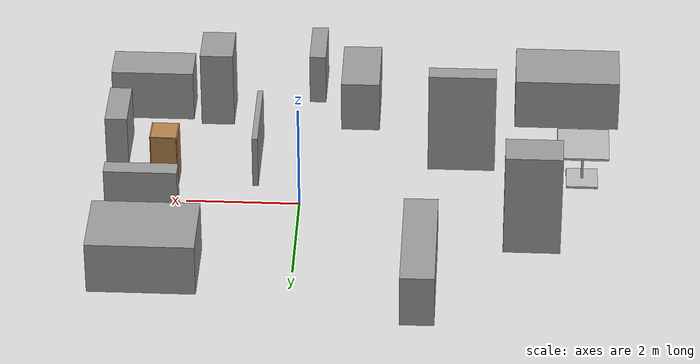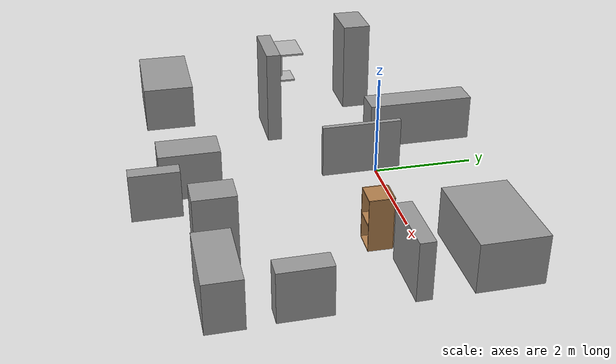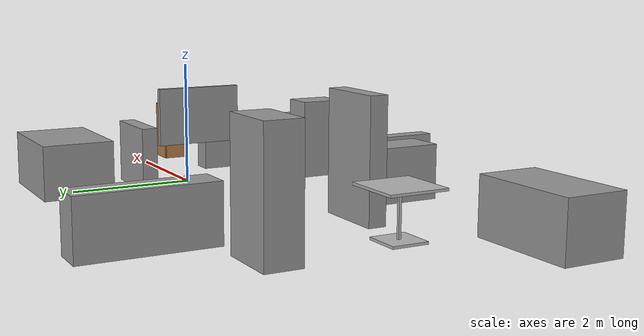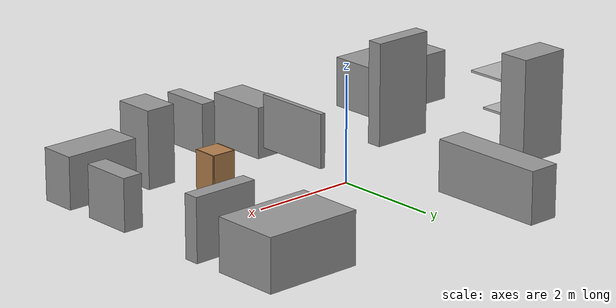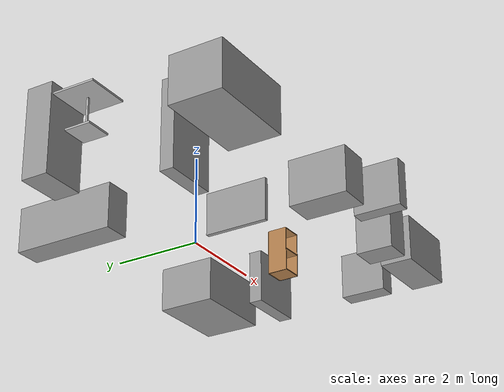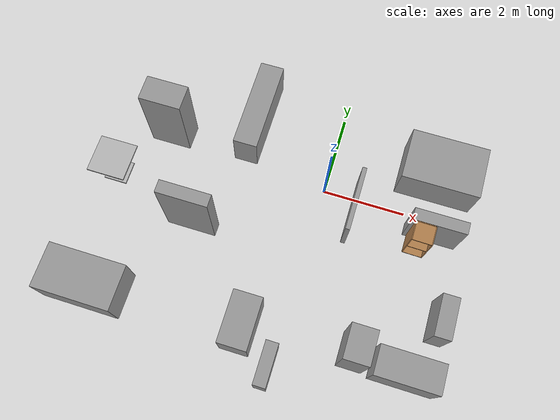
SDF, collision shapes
<?xml version='1.0'?>
<sdf version='1.6'>
  <model name='furniture'>
    <link name='link'>
      <pose frame=''>0.75265 -0.543408 1.01689 0 -0 0</pose>
      <inertial>
        <mass>1</mass>
        <inertia>
          <ixx>0.166667</ixx>
          <ixy>0</ixy>
          <ixz>0</ixz>
          <iyy>0.166667</iyy>
          <iyz>0</iyz>
          <izz>0.166667</izz>
        </inertia>
        <pose frame=''>0 0 0 0 -0 0</pose>
      </inertial>
      <self_collide>0</self_collide>
      <kinematic>0</kinematic>
      <gravity>1</gravity>
      <visual name='visual'>
        <geometry>
          <box>
            <size>0.1 1.5 1</size>
          </box>
        </geometry>
        <material>
          <script>
            <name>Gazebo/Grey</name>
            <uri>file://media/materials/scripts/gazebo.material</uri>
          </script>
          <shader type='pixel'>
            <normal_map>__default__</normal_map>
          </shader>
          <ambient>0.3 0.3 0.3 1</ambient>
          <diffuse>0.7 0.7 0.7 1</diffuse>
          <specular>0.01 0.01 0.01 1</specular>
          <emissive>0 0 0 1</emissive>
        </material>
        <pose frame=''>0 0 0 0 -0 0</pose>
        <transparency>0</transparency>
        <cast_shadows>1</cast_shadows>
      </visual>
      <collision name='collision'>
        <laser_retro>0</laser_retro>
        <max_contacts>10</max_contacts>
        <pose frame=''>0 0 0 0 -0 0</pose>
        <geometry>
          <box>
            <size>0.1 1.5 1</size>
          </box>
        </geometry>
        <surface>
          <friction>
            <ode>
              <mu>1</mu>
              <mu2>1</mu2>
              <fdir1>0 0 0</fdir1>
              <slip1>0</slip1>
              <slip2>0</slip2>
            </ode>
            <torsional>
              <coefficient>1</coefficient>
              <patch_radius>0</patch_radius>
              <surface_radius>0</surface_radius>
              <use_patch_radius>1</use_patch_radius>
              <ode>
                <slip>0</slip>
              </ode>
            </torsional>
          </friction>
          <bounce>
            <restitution_coefficient>0</restitution_coefficient>
            <threshold>1e+06</threshold>
          </bounce>
          <contact>
            <collide_without_contact>0</collide_without_contact>
            <collide_without_contact_bitmask>1</collide_without_contact_bitmask>
            <collide_bitmask>1</collide_bitmask>
            <ode>
              <soft_cfm>0</soft_cfm>
              <soft_erp>0.2</soft_erp>
              <kp>1e+13</kp>
              <kd>1</kd>
              <max_vel>0.01</max_vel>
              <min_depth>0</min_depth>
            </ode>
            <bullet>
              <split_impulse>1</split_impulse>
              <split_impulse_penetration_threshold>-0.01</split_impulse_penetration_threshold>
              <soft_cfm>0</soft_cfm>
              <soft_erp>0.2</soft_erp>
              <kp>1e+13</kp>
              <kd>1</kd>
            </bullet>
          </contact>
        </surface>
      </collision>
    </link>
    <link name='link_0'>
      <pose frame=''>2.89716 -3.59208 0 0 -0 0</pose>
      <inertial>
        <mass>1</mass>
        <inertia>
          <ixx>0.166667</ixx>
          <ixy>0</ixy>
          <ixz>0</ixz>
          <iyy>0.166667</iyy>
          <iyz>0</iyz>
          <izz>0.166667</izz>
        </inertia>
        <pose frame=''>0 0 0 0 -0 0</pose>
      </inertial>
      <gravity>1</gravity>
      <self_collide>0</self_collide>
      <kinematic>0</kinematic>
      <visual name='visual'>
        <pose frame=''>0 0 0 0 -0 0</pose>
        <geometry>
          <box>
            <size>1.5 0.7 1</size>
          </box>
        </geometry>
        <material>
          <lighting>1</lighting>
          <script>
            <uri>file://media/materials/scripts/gazebo.material</uri>
            <name>Gazebo/Grey</name>
          </script>
          <shader type='pixel'>
            <normal_map>__default__</normal_map>
          </shader>
          <ambient>0.3 0.3 0.3 1</ambient>
          <diffuse>0.7 0.7 0.7 1</diffuse>
          <specular>0.01 0.01 0.01 1</specular>
          <emissive>0 0 0 1</emissive>
        </material>
        <transparency>0</transparency>
        <cast_shadows>1</cast_shadows>
      </visual>
      <collision name='collision'>
        <laser_retro>0</laser_retro>
        <max_contacts>10</max_contacts>
        <pose frame=''>0 0 0 0 -0 0</pose>
        <geometry>
          <box>
            <size>1.5 0.7 1</size>
          </box>
        </geometry>
        <surface>
          <friction>
            <ode>
              <mu>1</mu>
              <mu2>1</mu2>
              <fdir1>0 0 0</fdir1>
              <slip1>0</slip1>
              <slip2>0</slip2>
            </ode>
            <torsional>
              <coefficient>1</coefficient>
              <patch_radius>0</patch_radius>
              <surface_radius>0</surface_radius>
              <use_patch_radius>1</use_patch_radius>
              <ode>
                <slip>0</slip>
              </ode>
            </torsional>
          </friction>
          <bounce>
            <restitution_coefficient>0</restitution_coefficient>
            <threshold>1e+06</threshold>
          </bounce>
          <contact>
            <collide_without_contact>0</collide_without_contact>
            <collide_without_contact_bitmask>1</collide_without_contact_bitmask>
            <collide_bitmask>1</collide_bitmask>
            <ode>
              <soft_cfm>0</soft_cfm>
              <soft_erp>0.2</soft_erp>
              <kp>1e+13</kp>
              <kd>1</kd>
              <max_vel>0.01</max_vel>
              <min_depth>0</min_depth>
            </ode>
            <bullet>
              <split_impulse>1</split_impulse>
              <split_impulse_penetration_threshold>-0.01</split_impulse_penetration_threshold>
              <soft_cfm>0</soft_cfm>
              <soft_erp>0.2</soft_erp>
              <kp>1e+13</kp>
              <kd>1</kd>
            </bullet>
          </contact>
        </surface>
      </collision>
    </link>
    <link name='link_0_clone'>
      <pose frame=''>-0.939468 -3.66621 0 0 0 -1.56741</pose>
      <inertial>
        <mass>1</mass>
        <inertia>
          <ixx>0.166667</ixx>
          <ixy>0</ixy>
          <ixz>0</ixz>
          <iyy>0.166667</iyy>
          <iyz>0</iyz>
          <izz>0.166667</izz>
        </inertia>
        <pose frame=''>0 0 0 0 -0 0</pose>
      </inertial>
      <self_collide>0</self_collide>
      <kinematic>0</kinematic>
      <gravity>1</gravity>
      <visual name='visual'>
        <pose frame=''>0 0 0 0 -0 0</pose>
        <geometry>
          <box>
            <size>1.25 0.7 1</size>
          </box>
        </geometry>
        <material>
          <lighting>1</lighting>
          <script>
            <uri>file://media/materials/scripts/gazebo.material</uri>
            <name>Gazebo/Grey</name>
          </script>
          <shader type='pixel'>
            <normal_map>__default__</normal_map>
          </shader>
          <ambient>0.3 0.3 0.3 1</ambient>
          <diffuse>0.7 0.7 0.7 1</diffuse>
          <specular>0.01 0.01 0.01 1</specular>
          <emissive>0 0 0 1</emissive>
        </material>
        <transparency>0</transparency>
        <cast_shadows>1</cast_shadows>
      </visual>
      <collision name='collision'>
        <laser_retro>0</laser_retro>
        <max_contacts>10</max_contacts>
        <pose frame=''>0 0 0 0 -0 0</pose>
        <geometry>
          <box>
            <size>1.25 0.7 1</size>
          </box>
        </geometry>
        <surface>
          <friction>
            <ode>
              <mu>1</mu>
              <mu2>1</mu2>
              <fdir1>0 0 0</fdir1>
              <slip1>0</slip1>
              <slip2>0</slip2>
            </ode>
            <torsional>
              <coefficient>1</coefficient>
              <patch_radius>0</patch_radius>
              <surface_radius>0</surface_radius>
              <use_patch_radius>1</use_patch_radius>
              <ode>
                <slip>0</slip>
              </ode>
            </torsional>
          </friction>
          <bounce>
            <restitution_coefficient>0</restitution_coefficient>
            <threshold>1e+06</threshold>
          </bounce>
          <contact>
            <collide_without_contact>0</collide_without_contact>
            <collide_without_contact_bitmask>1</collide_without_contact_bitmask>
            <collide_bitmask>1</collide_bitmask>
            <ode>
              <soft_cfm>0</soft_cfm>
              <soft_erp>0.2</soft_erp>
              <kp>1e+13</kp>
              <kd>1</kd>
              <max_vel>0.01</max_vel>
              <min_depth>0</min_depth>
            </ode>
            <bullet>
              <split_impulse>1</split_impulse>
              <split_impulse_penetration_threshold>-0.01</split_impulse_penetration_threshold>
              <soft_cfm>0</soft_cfm>
              <soft_erp>0.2</soft_erp>
              <kp>1e+13</kp>
              <kd>1</kd>
            </bullet>
          </contact>
        </surface>
      </collision>
    </link>
    <link name='link_1'>
      <pose frame=''>2.63114 1.396 0 0 -0 0</pose>
      <inertial>
        <mass>1</mass>
        <inertia>
          <ixx>0.166667</ixx>
          <ixy>0</ixy>
          <ixz>0</ixz>
          <iyy>0.166667</iyy>
          <iyz>0</iyz>
          <izz>0.166667</izz>
        </inertia>
        <pose frame=''>0 0 0 0 -0 0</pose>
      </inertial>
      <gravity>1</gravity>
      <self_collide>0</self_collide>
      <kinematic>0</kinematic>
      <visual name='visual'>
        <pose frame=''>0 0 0 0 -0 0</pose>
        <geometry>
          <box>
            <size>1.9 1.3 1</size>
          </box>
        </geometry>
        <material>
          <lighting>1</lighting>
          <script>
            <uri>file://media/materials/scripts/gazebo.material</uri>
            <name>Gazebo/Grey</name>
          </script>
          <shader type='pixel'>
            <normal_map>__default__</normal_map>
          </shader>
          <ambient>0.3 0.3 0.3 1</ambient>
          <diffuse>0.7 0.7 0.7 1</diffuse>
          <specular>0.01 0.01 0.01 1</specular>
          <emissive>0 0 0 1</emissive>
        </material>
        <transparency>0</transparency>
        <cast_shadows>1</cast_shadows>
      </visual>
      <collision name='collision'>
        <laser_retro>0</laser_retro>
        <max_contacts>10</max_contacts>
        <pose frame=''>0 0 0 0 -0 0</pose>
        <geometry>
          <box>
            <size>1.9 1.3 1</size>
          </box>
        </geometry>
        <surface>
          <friction>
            <ode>
              <mu>1</mu>
              <mu2>1</mu2>
              <fdir1>0 0 0</fdir1>
              <slip1>0</slip1>
              <slip2>0</slip2>
            </ode>
            <torsional>
              <coefficient>1</coefficient>
              <patch_radius>0</patch_radius>
              <surface_radius>0</surface_radius>
              <use_patch_radius>1</use_patch_radius>
              <ode>
                <slip>0</slip>
              </ode>
            </torsional>
          </friction>
          <bounce>
            <restitution_coefficient>0</restitution_coefficient>
            <threshold>1e+06</threshold>
          </bounce>
          <contact>
            <collide_without_contact>0</collide_without_contact>
            <collide_without_contact_bitmask>1</collide_without_contact_bitmask>
            <collide_bitmask>1</collide_bitmask>
            <ode>
              <soft_cfm>0</soft_cfm>
              <soft_erp>0.2</soft_erp>
              <kp>1e+13</kp>
              <kd>1</kd>
              <max_vel>0.01</max_vel>
              <min_depth>0</min_depth>
            </ode>
            <bullet>
              <split_impulse>1</split_impulse>
              <split_impulse_penetration_threshold>-0.01</split_impulse_penetration_threshold>
              <soft_cfm>0</soft_cfm>
              <soft_erp>0.2</soft_erp>
              <kp>1e+13</kp>
              <kd>1</kd>
            </bullet>
          </contact>
        </surface>
      </collision>
    </link>
    <link name='link_1_clone'>
      <pose frame=''>-4.73179 -3.80975 0 0 -0 0</pose>
      <inertial>
        <mass>1</mass>
        <inertia>
          <ixx>0.166667</ixx>
          <ixy>0</ixy>
          <ixz>0</ixz>
          <iyy>0.166667</iyy>
          <iyz>0</iyz>
          <izz>0.166667</izz>
        </inertia>
        <pose frame=''>0 0 0 0 -0 0</pose>
      </inertial>
      <self_collide>0</self_collide>
      <kinematic>0</kinematic>
      <gravity>1</gravity>
      <visual name='visual'>
        <pose frame=''>0 0 0 0 -0 0</pose>
        <geometry>
          <box>
            <size>1.9 1.1 1</size>
          </box>
        </geometry>
        <material>
          <lighting>1</lighting>
          <script>
            <uri>file://media/materials/scripts/gazebo.material</uri>
            <name>Gazebo/Grey</name>
          </script>
          <shader type='pixel'>
            <normal_map>__default__</normal_map>
          </shader>
          <ambient>0.3 0.3 0.3 1</ambient>
          <diffuse>0.7 0.7 0.7 1</diffuse>
          <specular>0.01 0.01 0.01 1</specular>
          <emissive>0 0 0 1</emissive>
        </material>
        <transparency>0</transparency>
        <cast_shadows>1</cast_shadows>
      </visual>
      <collision name='collision'>
        <laser_retro>0</laser_retro>
        <max_contacts>10</max_contacts>
        <pose frame=''>0 0 0 0 -0 0</pose>
        <geometry>
          <box>
            <size>1.9 1.1 1</size>
          </box>
        </geometry>
        <surface>
          <friction>
            <ode>
              <mu>1</mu>
              <mu2>1</mu2>
              <fdir1>0 0 0</fdir1>
              <slip1>0</slip1>
              <slip2>0</slip2>
            </ode>
            <torsional>
              <coefficient>1</coefficient>
              <patch_radius>0</patch_radius>
              <surface_radius>0</surface_radius>
              <use_patch_radius>1</use_patch_radius>
              <ode>
                <slip>0</slip>
              </ode>
            </torsional>
          </friction>
          <bounce>
            <restitution_coefficient>0</restitution_coefficient>
            <threshold>1e+06</threshold>
          </bounce>
          <contact>
            <collide_without_contact>0</collide_without_contact>
            <collide_without_contact_bitmask>1</collide_without_contact_bitmask>
            <collide_bitmask>1</collide_bitmask>
            <ode>
              <soft_cfm>0</soft_cfm>
              <soft_erp>0.2</soft_erp>
              <kp>1e+13</kp>
              <kd>1</kd>
              <max_vel>0.01</max_vel>
              <min_depth>0</min_depth>
            </ode>
            <bullet>
              <split_impulse>1</split_impulse>
              <split_impulse_penetration_threshold>-0.01</split_impulse_penetration_threshold>
              <soft_cfm>0</soft_cfm>
              <soft_erp>0.2</soft_erp>
              <kp>1e+13</kp>
              <kd>1</kd>
            </bullet>
          </contact>
        </surface>
      </collision>
    </link>
    <link name='link_2'>
      <pose frame=''>2.80724 -0.132802 0 0 -0 0</pose>
      <inertial>
        <mass>1</mass>
        <inertia>
          <ixx>0.166667</ixx>
          <ixy>0</ixy>
          <ixz>0</ixz>
          <iyy>0.166667</iyy>
          <iyz>0</iyz>
          <izz>0.166667</izz>
        </inertia>
        <pose frame=''>0 0 0 0 -0 0</pose>
      </inertial>
      <gravity>1</gravity>
      <self_collide>0</self_collide>
      <kinematic>0</kinematic>
      <visual name='visual'>
        <pose frame=''>0 0 0 0 -0 0</pose>
        <geometry>
          <box>
            <size>1.3 0.3 1.2</size>
          </box>
        </geometry>
        <material>
          <lighting>1</lighting>
          <script>
            <uri>file://media/materials/scripts/gazebo.material</uri>
            <name>Gazebo/Grey</name>
          </script>
          <shader type='pixel'>
            <normal_map>__default__</normal_map>
          </shader>
          <ambient>0.3 0.3 0.3 1</ambient>
          <diffuse>0.7 0.7 0.7 1</diffuse>
          <specular>0.01 0.01 0.01 1</specular>
          <emissive>0 0 0 1</emissive>
        </material>
        <transparency>0</transparency>
        <cast_shadows>1</cast_shadows>
      </visual>
      <collision name='collision'>
        <laser_retro>0</laser_retro>
        <max_contacts>10</max_contacts>
        <pose frame=''>0 0 0 0 -0 0</pose>
        <geometry>
          <box>
            <size>1.3 0.3 1.2</size>
          </box>
        </geometry>
        <surface>
          <friction>
            <ode>
              <mu>1</mu>
              <mu2>1</mu2>
              <fdir1>0 0 0</fdir1>
              <slip1>0</slip1>
              <slip2>0</slip2>
            </ode>
            <torsional>
              <coefficient>1</coefficient>
              <patch_radius>0</patch_radius>
              <surface_radius>0</surface_radius>
              <use_patch_radius>1</use_patch_radius>
              <ode>
                <slip>0</slip>
              </ode>
            </torsional>
          </friction>
          <bounce>
            <restitution_coefficient>0</restitution_coefficient>
            <threshold>1e+06</threshold>
          </bounce>
          <contact>
            <collide_without_contact>0</collide_without_contact>
            <collide_without_contact_bitmask>1</collide_without_contact_bitmask>
            <collide_bitmask>1</collide_bitmask>
            <ode>
              <soft_cfm>0</soft_cfm>
              <soft_erp>0.2</soft_erp>
              <kp>1e+13</kp>
              <kd>1</kd>
              <max_vel>0.01</max_vel>
              <min_depth>0</min_depth>
            </ode>
            <bullet>
              <split_impulse>1</split_impulse>
              <split_impulse_penetration_threshold>-0.01</split_impulse_penetration_threshold>
              <soft_cfm>0</soft_cfm>
              <soft_erp>0.2</soft_erp>
              <kp>1e+13</kp>
              <kd>1</kd>
            </bullet>
          </contact>
        </surface>
      </collision>
    </link>
    <link name='link_3'>
      <pose frame=''>-2.8258 -1.64665 0.755792 0 -0 0</pose>
      <inertial>
        <mass>1</mass>
        <inertia>
          <ixx>0.166667</ixx>
          <ixy>0</ixy>
          <ixz>0</ixz>
          <iyy>0.166667</iyy>
          <iyz>0</iyz>
          <izz>0.166667</izz>
        </inertia>
        <pose frame=''>0 0 0 0 -0 0</pose>
      </inertial>
      <gravity>1</gravity>
      <self_collide>0</self_collide>
      <kinematic>0</kinematic>
      <visual name='visual'>
        <pose frame=''>0 0 0 0 -0 0</pose>
        <geometry>
          <box>
            <size>1.2 0.3 2</size>
          </box>
        </geometry>
        <material>
          <lighting>1</lighting>
          <script>
            <uri>file://media/materials/scripts/gazebo.material</uri>
            <name>Gazebo/Grey</name>
          </script>
          <shader type='pixel'>
            <normal_map>__default__</normal_map>
          </shader>
          <ambient>0.3 0.3 0.3 1</ambient>
          <diffuse>0.7 0.7 0.7 1</diffuse>
          <specular>0.01 0.01 0.01 1</specular>
          <emissive>0 0 0 1</emissive>
        </material>
        <transparency>0</transparency>
        <cast_shadows>1</cast_shadows>
      </visual>
      <collision name='collision'>
        <laser_retro>0</laser_retro>
        <max_contacts>10</max_contacts>
        <pose frame=''>0 0 0 0 -0 0</pose>
        <geometry>
          <box>
            <size>1.2 0.3 2</size>
          </box>
        </geometry>
        <surface>
          <friction>
            <ode>
              <mu>1</mu>
              <mu2>1</mu2>
              <fdir1>0 0 0</fdir1>
              <slip1>0</slip1>
              <slip2>0</slip2>
            </ode>
            <torsional>
              <coefficient>1</coefficient>
              <patch_radius>0</patch_radius>
              <surface_radius>0</surface_radius>
              <use_patch_radius>1</use_patch_radius>
              <ode>
                <slip>0</slip>
              </ode>
            </torsional>
          </friction>
          <bounce>
            <restitution_coefficient>0</restitution_coefficient>
            <threshold>1e+06</threshold>
          </bounce>
          <contact>
            <collide_without_contact>0</collide_without_contact>
            <collide_without_contact_bitmask>1</collide_without_contact_bitmask>
            <collide_bitmask>1</collide_bitmask>
            <ode>
              <soft_cfm>0</soft_cfm>
              <soft_erp>0.2</soft_erp>
              <kp>1e+13</kp>
              <kd>1</kd>
              <max_vel>0.01</max_vel>
              <min_depth>0</min_depth>
            </ode>
            <bullet>
              <split_impulse>1</split_impulse>
              <split_impulse_penetration_threshold>-0.01</split_impulse_penetration_threshold>
              <soft_cfm>0</soft_cfm>
              <soft_erp>0.2</soft_erp>
              <kp>1e+13</kp>
              <kd>1</kd>
            </bullet>
          </contact>
        </surface>
      </collision>
    </link>
    <link name='link_4'>
      <pose frame=''>1.69062 -3.47651 0.269057 0 -0 0</pose>
      <inertial>
        <mass>1</mass>
        <inertia>
          <ixx>0.166667</ixx>
          <ixy>0</ixy>
          <ixz>0</ixz>
          <iyy>0.166667</iyy>
          <iyz>0</iyz>
          <izz>0.166667</izz>
        </inertia>
        <pose frame=''>0 0 0 0 -0 0</pose>
      </inertial>
      <gravity>1</gravity>
      <self_collide>0</self_collide>
      <kinematic>0</kinematic>
      <visual name='visual'>
        <pose frame=''>0 0 0 0 -0 0</pose>
        <geometry>
          <box>
            <size>0.6 0.8 1.5</size>
          </box>
        </geometry>
        <material>
          <lighting>1</lighting>
          <script>
            <uri>file://media/materials/scripts/gazebo.material</uri>
            <name>Gazebo/Grey</name>
          </script>
          <shader type='pixel'>
            <normal_map>__default__</normal_map>
          </shader>
          <ambient>0.3 0.3 0.3 1</ambient>
          <diffuse>0.7 0.7 0.7 1</diffuse>
          <specular>0.01 0.01 0.01 1</specular>
          <emissive>0 0 0 1</emissive>
        </material>
        <transparency>0</transparency>
        <cast_shadows>1</cast_shadows>
      </visual>
      <collision name='collision'>
        <laser_retro>0</laser_retro>
        <max_contacts>10</max_contacts>
        <pose frame=''>0 0 0 0 -0 0</pose>
        <geometry>
          <box>
            <size>0.6 0.8 1.5</size>
          </box>
        </geometry>
        <surface>
          <friction>
            <ode>
              <mu>1</mu>
              <mu2>1</mu2>
              <fdir1>0 0 0</fdir1>
              <slip1>0</slip1>
              <slip2>0</slip2>
            </ode>
            <torsional>
              <coefficient>1</coefficient>
              <patch_radius>0</patch_radius>
              <surface_radius>0</surface_radius>
              <use_patch_radius>1</use_patch_radius>
              <ode>
                <slip>0</slip>
              </ode>
            </torsional>
          </friction>
          <bounce>
            <restitution_coefficient>0</restitution_coefficient>
            <threshold>1e+06</threshold>
          </bounce>
          <contact>
            <collide_without_contact>0</collide_without_contact>
            <collide_without_contact_bitmask>1</collide_without_contact_bitmask>
            <collide_bitmask>1</collide_bitmask>
            <ode>
              <soft_cfm>0</soft_cfm>
              <soft_erp>0.2</soft_erp>
              <kp>1e+13</kp>
              <kd>1</kd>
              <max_vel>0.01</max_vel>
              <min_depth>0</min_depth>
            </ode>
            <bullet>
              <split_impulse>1</split_impulse>
              <split_impulse_penetration_threshold>-0.01</split_impulse_penetration_threshold>
              <soft_cfm>0</soft_cfm>
              <soft_erp>0.2</soft_erp>
              <kp>1e+13</kp>
              <kd>1</kd>
            </bullet>
          </contact>
        </surface>
      </collision>
    </link>
    <link name='link_5'>
      <pose frame=''>3.41579 -2.24418 0 0 -0 0</pose>
      <inertial>
        <mass>1</mass>
        <inertia>
          <ixx>0.166667</ixx>
          <ixy>0</ixy>
          <ixz>0</ixz>
          <iyy>0.166667</iyy>
          <iyz>0</iyz>
          <izz>0.166667</izz>
        </inertia>
        <pose frame=''>0 0 0 0 -0 0</pose>
      </inertial>
      <gravity>1</gravity>
      <self_collide>0</self_collide>
      <kinematic>0</kinematic>
      <visual name='visual'>
        <pose frame=''>0 0 0 0 -0 0</pose>
        <geometry>
          <box>
            <size>0.4 1 1</size>
          </box>
        </geometry>
        <material>
          <lighting>1</lighting>
          <script>
            <uri>file://media/materials/scripts/gazebo.material</uri>
            <name>Gazebo/Grey</name>
          </script>
          <shader type='pixel'>
            <normal_map>__default__</normal_map>
          </shader>
          <ambient>0.3 0.3 0.3 1</ambient>
          <diffuse>0.7 0.7 0.7 1</diffuse>
          <specular>0.01 0.01 0.01 1</specular>
          <emissive>0 0 0 1</emissive>
        </material>
        <transparency>0</transparency>
        <cast_shadows>1</cast_shadows>
      </visual>
      <collision name='collision'>
        <laser_retro>0</laser_retro>
        <max_contacts>10</max_contacts>
        <pose frame=''>0 0 0 0 -0 0</pose>
        <geometry>
          <box>
            <size>0.4 1 1</size>
          </box>
        </geometry>
        <surface>
          <friction>
            <ode>
              <mu>1</mu>
              <mu2>1</mu2>
              <fdir1>0 0 0</fdir1>
              <slip1>0</slip1>
              <slip2>0</slip2>
            </ode>
            <torsional>
              <coefficient>1</coefficient>
              <patch_radius>0</patch_radius>
              <surface_radius>0</surface_radius>
              <use_patch_radius>1</use_patch_radius>
              <ode>
                <slip>0</slip>
              </ode>
            </torsional>
          </friction>
          <bounce>
            <restitution_coefficient>0</restitution_coefficient>
            <threshold>1e+06</threshold>
          </bounce>
          <contact>
            <collide_without_contact>0</collide_without_contact>
            <collide_without_contact_bitmask>1</collide_without_contact_bitmask>
            <collide_bitmask>1</collide_bitmask>
            <ode>
              <soft_cfm>0</soft_cfm>
              <soft_erp>0.2</soft_erp>
              <kp>1e+13</kp>
              <kd>1</kd>
              <max_vel>0.01</max_vel>
              <min_depth>0</min_depth>
            </ode>
            <bullet>
              <split_impulse>1</split_impulse>
              <split_impulse_penetration_threshold>-0.01</split_impulse_penetration_threshold>
              <soft_cfm>0</soft_cfm>
              <soft_erp>0.2</soft_erp>
              <kp>1e+13</kp>
              <kd>1</kd>
            </bullet>
          </contact>
        </surface>
      </collision>
    </link>
    <link name='link_6'>
      <pose frame=''>-0.112389 -4.40268 0 0 -0 0</pose>
      <inertial>
        <mass>1</mass>
        <inertia>
          <ixx>0.166667</ixx>
          <ixy>0</ixy>
          <ixz>0</ixz>
          <iyy>0.166667</iyy>
          <iyz>0</iyz>
          <izz>0.166667</izz>
        </inertia>
        <pose frame=''>0 0 0 0 -0 0</pose>
      </inertial>
      <gravity>1</gravity>
      <self_collide>0</self_collide>
      <kinematic>0</kinematic>
      <visual name='visual'>
        <pose frame=''>0 0 0 0 -0 0</pose>
        <geometry>
          <box>
            <size>0.3 1 1</size>
          </box>
        </geometry>
        <material>
          <lighting>1</lighting>
          <script>
            <uri>file://media/materials/scripts/gazebo.material</uri>
            <name>Gazebo/Grey</name>
          </script>
          <shader type='pixel'>
            <normal_map>__default__</normal_map>
          </shader>
          <ambient>0.3 0.3 0.3 1</ambient>
          <diffuse>0.7 0.7 0.7 1</diffuse>
          <specular>0.01 0.01 0.01 1</specular>
          <emissive>0 0 0 1</emissive>
        </material>
        <transparency>0</transparency>
        <cast_shadows>1</cast_shadows>
      </visual>
      <collision name='collision'>
        <laser_retro>0</laser_retro>
        <max_contacts>10</max_contacts>
        <pose frame=''>0 0 0 0 -0 0</pose>
        <geometry>
          <box>
            <size>0.3 1 1</size>
          </box>
        </geometry>
        <surface>
          <friction>
            <ode>
              <mu>1</mu>
              <mu2>1</mu2>
              <fdir1>0 0 0</fdir1>
              <slip1>0</slip1>
              <slip2>0</slip2>
            </ode>
            <torsional>
              <coefficient>1</coefficient>
              <patch_radius>0</patch_radius>
              <surface_radius>0</surface_radius>
              <use_patch_radius>1</use_patch_radius>
              <ode>
                <slip>0</slip>
              </ode>
            </torsional>
          </friction>
          <bounce>
            <restitution_coefficient>0</restitution_coefficient>
            <threshold>1e+06</threshold>
          </bounce>
          <contact>
            <collide_without_contact>0</collide_without_contact>
            <collide_without_contact_bitmask>1</collide_without_contact_bitmask>
            <collide_bitmask>1</collide_bitmask>
            <ode>
              <soft_cfm>0</soft_cfm>
              <soft_erp>0.2</soft_erp>
              <kp>1e+13</kp>
              <kd>1</kd>
              <max_vel>0.01</max_vel>
              <min_depth>0</min_depth>
            </ode>
            <bullet>
              <split_impulse>1</split_impulse>
              <split_impulse_penetration_threshold>-0.01</split_impulse_penetration_threshold>
              <soft_cfm>0</soft_cfm>
              <soft_erp>0.2</soft_erp>
              <kp>1e+13</kp>
              <kd>1</kd>
            </bullet>
          </contact>
        </surface>
      </collision>
    </link>
    <link name='link_7'>
      <pose frame=''>-2.16338 1.58927 0 0 -0 0</pose>
      <inertial>
        <mass>1</mass>
        <inertia>
          <ixx>0.166667</ixx>
          <ixy>0</ixy>
          <ixz>0</ixz>
          <iyy>0.166667</iyy>
          <iyz>0</iyz>
          <izz>0.166667</izz>
        </inertia>
        <pose frame=''>0 0 0 0 -0 0</pose>
      </inertial>
      <gravity>1</gravity>
      <self_collide>0</self_collide>
      <kinematic>0</kinematic>
      <visual name='visual'>
        <pose frame=''>0 0 0 0 -0 0</pose>
        <geometry>
          <box>
            <size>0.6 2.3 1</size>
          </box>
        </geometry>
        <material>
          <lighting>1</lighting>
          <script>
            <uri>file://media/materials/scripts/gazebo.material</uri>
            <name>Gazebo/Grey</name>
          </script>
          <shader type='pixel'>
            <normal_map>__default__</normal_map>
          </shader>
          <ambient>0.3 0.3 0.3 1</ambient>
          <diffuse>0.7 0.7 0.7 1</diffuse>
          <specular>0.01 0.01 0.01 1</specular>
          <emissive>0 0 0 1</emissive>
        </material>
        <transparency>0</transparency>
        <cast_shadows>1</cast_shadows>
      </visual>
      <collision name='collision'>
        <laser_retro>0</laser_retro>
        <max_contacts>10</max_contacts>
        <pose frame=''>0 0 0 0 -0 0</pose>
        <geometry>
          <box>
            <size>0.6 2.3 1</size>
          </box>
        </geometry>
        <surface>
          <friction>
            <ode>
              <mu>1</mu>
              <mu2>1</mu2>
              <fdir1>0 0 0</fdir1>
              <slip1>0</slip1>
              <slip2>0</slip2>
            </ode>
            <torsional>
              <coefficient>1</coefficient>
              <patch_radius>0</patch_radius>
              <surface_radius>0</surface_radius>
              <use_patch_radius>1</use_patch_radius>
              <ode>
                <slip>0</slip>
              </ode>
            </torsional>
          </friction>
          <bounce>
            <restitution_coefficient>0</restitution_coefficient>
            <threshold>1e+06</threshold>
          </bounce>
          <contact>
            <collide_without_contact>0</collide_without_contact>
            <collide_without_contact_bitmask>1</collide_without_contact_bitmask>
            <collide_bitmask>1</collide_bitmask>
            <ode>
              <soft_cfm>0</soft_cfm>
              <soft_erp>0.2</soft_erp>
              <kp>1e+13</kp>
              <kd>1</kd>
              <max_vel>0.01</max_vel>
              <min_depth>0</min_depth>
            </ode>
            <bullet>
              <split_impulse>1</split_impulse>
              <split_impulse_penetration_threshold>-0.01</split_impulse_penetration_threshold>
              <soft_cfm>0</soft_cfm>
              <soft_erp>0.2</soft_erp>
              <kp>1e+13</kp>
              <kd>1</kd>
            </bullet>
          </contact>
        </surface>
      </collision>
    </link>
    <link name='link_8'>
      <pose frame=''>-4.10977 0.560344 0.701494 0 -0 0</pose>
      <inertial>
        <mass>1</mass>
        <inertia>
          <ixx>0.166667</ixx>
          <ixy>0</ixy>
          <ixz>0</ixz>
          <iyy>0.166667</iyy>
          <iyz>0</iyz>
          <izz>0.166667</izz>
        </inertia>
        <pose frame=''>0 0 0 0 -0 0</pose>
      </inertial>
      <gravity>1</gravity>
      <self_collide>0</self_collide>
      <kinematic>0</kinematic>
      <visual name='visual'>
        <pose frame=''>0 0 0 0 -0 0</pose>
        <geometry>
          <box>
            <size>1 0.6 2</size>
          </box>
        </geometry>
        <material>
          <lighting>1</lighting>
          <script>
            <uri>file://media/materials/scripts/gazebo.material</uri>
            <name>Gazebo/Grey</name>
          </script>
          <shader type='pixel'>
            <normal_map>__default__</normal_map>
          </shader>
          <ambient>0.3 0.3 0.3 1</ambient>
          <diffuse>0.7 0.7 0.7 1</diffuse>
          <specular>0.01 0.01 0.01 1</specular>
          <emissive>0 0 0 1</emissive>
        </material>
        <transparency>0</transparency>
        <cast_shadows>1</cast_shadows>
      </visual>
      <collision name='collision'>
        <laser_retro>0</laser_retro>
        <max_contacts>10</max_contacts>
        <pose frame=''>0 0 0 0 -0 0</pose>
        <geometry>
          <box>
            <size>1 0.6 2</size>
          </box>
        </geometry>
        <surface>
          <friction>
            <ode>
              <mu>1</mu>
              <mu2>1</mu2>
              <fdir1>0 0 0</fdir1>
              <slip1>0</slip1>
              <slip2>0</slip2>
            </ode>
            <torsional>
              <coefficient>1</coefficient>
              <patch_radius>0</patch_radius>
              <surface_radius>0</surface_radius>
              <use_patch_radius>1</use_patch_radius>
              <ode>
                <slip>0</slip>
              </ode>
            </torsional>
          </friction>
          <bounce>
            <restitution_coefficient>0</restitution_coefficient>
            <threshold>1e+06</threshold>
          </bounce>
          <contact>
            <collide_without_contact>0</collide_without_contact>
            <collide_without_contact_bitmask>1</collide_without_contact_bitmask>
            <collide_bitmask>1</collide_bitmask>
            <ode>
              <soft_cfm>0</soft_cfm>
              <soft_erp>0.2</soft_erp>
              <kp>1e+13</kp>
              <kd>1</kd>
              <max_vel>0.01</max_vel>
              <min_depth>0</min_depth>
            </ode>
            <bullet>
              <split_impulse>1</split_impulse>
              <split_impulse_penetration_threshold>-0.01</split_impulse_penetration_threshold>
              <soft_cfm>0</soft_cfm>
              <soft_erp>0.2</soft_erp>
              <kp>1e+13</kp>
              <kd>1</kd>
            </bullet>
          </contact>
        </surface>
      </collision>
    </link>
    <model name='cabinet'>
      <static>1</static>
      <link name='cabinet_bottom_plate'>
        <inertial>
          <pose frame=''>0 0 -1 0 -0 0</pose>
          <inertia>
            <ixx>2.05</ixx>
            <ixy>0</ixy>
            <ixz>0</ixz>
            <iyy>2.05</iyy>
            <iyz>0</iyz>
            <izz>2.05</izz>
          </inertia>
          <mass>25</mass>
        </inertial>
        <collision name='cabinet_bottom_plate_geom'>
          <pose frame=''>0 0 0.01 0 -0 0</pose>
          <geometry>
            <box>
              <size>0.45 0.45 0.02</size>
            </box>
          </geometry>
        </collision>
        <visual name='cabinet_bottom_plate_geom_visual'>
          <pose frame=''>0 0 0.01 0 -0 0</pose>
          <geometry>
            <box>
              <size>0.45 0.45 0.02</size>
            </box>
          </geometry>
          <material>
            <script>
              <uri>file://media/materials/scripts/gazebo.material</uri>
              <name>Gazebo/Wood</name>
            </script>
          </material>
        </visual>
        <collision name='cabinet_bottom_plate_geom_cabinet_back_plate'>
          <pose frame=''>0.235 0 0.51 0 -0 0</pose>
          <geometry>
            <box>
              <size>0.02 0.45 1.02</size>
            </box>
          </geometry>
        </collision>
        <visual name='cabinet_bottom_plate_geom_cabinet_back_plate_visual'>
          <pose frame=''>0.235 0 0.51 0 -0 0</pose>
          <geometry>
            <box>
              <size>0.02 0.45 1.02</size>
            </box>
          </geometry>
          <material>
            <script>
              <uri>file://media/materials/scripts/gazebo.material</uri>
              <name>Gazebo/Wood</name>
            </script>
          </material>
        </visual>
        <collision name='cabinet_bottom_plate_geom_cabinet_left_plate'>
          <pose frame=''>0 0.235 0.51 0 -0 0</pose>
          <geometry>
            <box>
              <size>0.45 0.02 1.02</size>
            </box>
          </geometry>
        </collision>
        <visual name='cabinet_bottom_plate_geom_cabinet_left_plate_visual'>
          <pose frame=''>0 0.235 0.51 0 -0 0</pose>
          <geometry>
            <box>
              <size>0.45 0.02 1.02</size>
            </box>
          </geometry>
          <material>
            <script>
              <uri>file://media/materials/scripts/gazebo.material</uri>
              <name>Gazebo/Wood</name>
            </script>
          </material>
        </visual>
        <collision name='cabinet_bottom_plate_geom_cabinet_middle_plate'>
          <pose frame=''>0 0 0.51 0 -0 0</pose>
          <geometry>
            <box>
              <size>0.45 0.45 0.02</size>
            </box>
          </geometry>
        </collision>
        <visual name='cabinet_bottom_plate_geom_cabinet_middle_plate_visual'>
          <pose frame=''>0 0 0.51 0 -0 0</pose>
          <geometry>
            <box>
              <size>0.45 0.45 0.02</size>
            </box>
          </geometry>
          <material>
            <script>
              <uri>file://media/materials/scripts/gazebo.material</uri>
              <name>Gazebo/Wood</name>
            </script>
          </material>
        </visual>
        <collision name='cabinet_bottom_plate_geom_cabinet_right_plate'>
          <pose frame=''>0 -0.235 0.51 0 -0 0</pose>
          <geometry>
            <box>
              <size>0.45 0.02 1.02</size>
            </box>
          </geometry>
        </collision>
        <visual name='cabinet_bottom_plate_geom_cabinet_right_plate_visual'>
          <pose frame=''>0 -0.235 0.51 0 -0 0</pose>
          <geometry>
            <box>
              <size>0.45 0.02 1.02</size>
            </box>
          </geometry>
          <material>
            <script>
              <uri>file://media/materials/scripts/gazebo.material</uri>
              <name>Gazebo/Wood</name>
            </script>
          </material>
        </visual>
        <collision name='cabinet_bottom_plate_geom_cabinet_top_plate'>
          <pose frame=''>0 0 1.01 0 -0 0</pose>
          <geometry>
            <box>
              <size>0.45 0.45 0.02</size>
            </box>
          </geometry>
        </collision>
        <visual name='cabinet_bottom_plate_geom_cabinet_top_plate_visual'>
          <pose frame=''>0 0 1.01 0 -0 0</pose>
          <geometry>
            <box>
              <size>0.45 0.45 0.02</size>
            </box>
          </geometry>
          <material>
            <script>
              <uri>file://media/materials/scripts/gazebo.material</uri>
              <name>Gazebo/Wood</name>
            </script>
          </material>
        </visual>
      </link>
      <pose frame=''>2.42057 -0.70292 0 0 -0 1.55422</pose>
    </model>
    <model name='cafe_table'>
      <static>1</static>
      <link name='link'>
        <collision name='surface'>
          <pose frame=''>0 0 0.755 0 -0 0</pose>
          <geometry>
            <box>
              <size>0.913 0.913 0.04</size>
            </box>
          </geometry>
        </collision>
        <collision name='column'>
          <pose frame=''>0 0 0.37 0 -0 0</pose>
          <geometry>
            <box>
              <size>0.042 0.042 0.74</size>
            </box>
          </geometry>
        </collision>
        <collision name='base'>
          <pose frame=''>0 0 0.02 0 -0 0</pose>
          <geometry>
            <box>
              <size>0.56 0.56 0.04</size>
            </box>
          </geometry>
        </collision>
        <visual name='visual'>
          <geometry>
            <mesh>
              <uri>model://cafe_table/meshes/cafe_table.dae</uri>
            </mesh>
          </geometry>
        </visual>
      </link>
      <pose frame=''>-4.98715 -0.961715 0 0 -0 0</pose>
    </model>
    <static>1</static>
    <allow_auto_disable>1</allow_auto_disable>
  </model>
</sdf>
